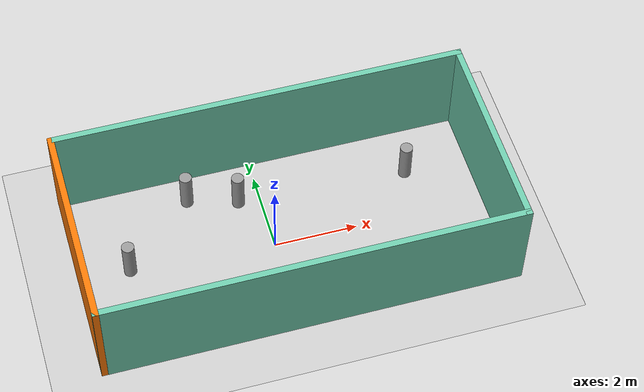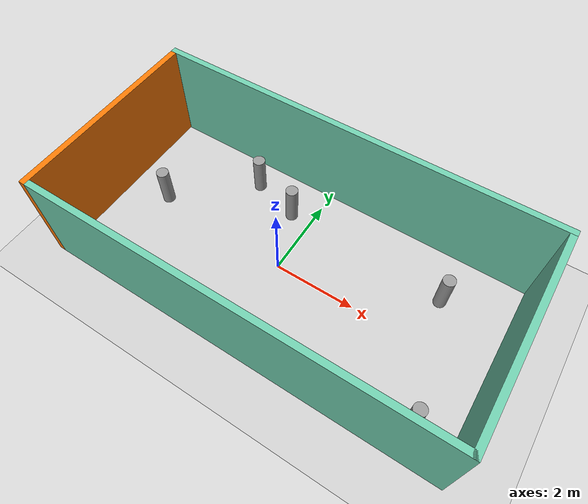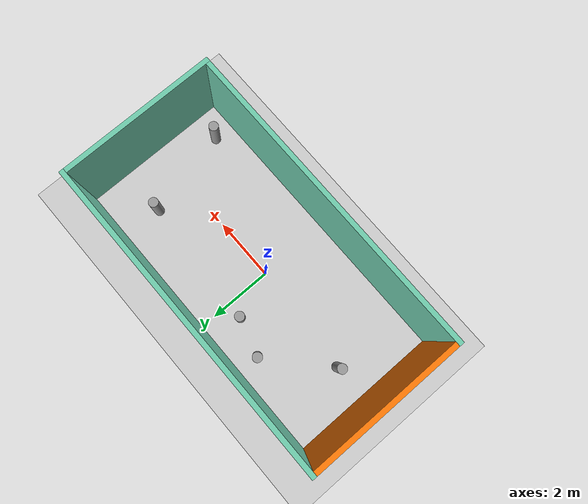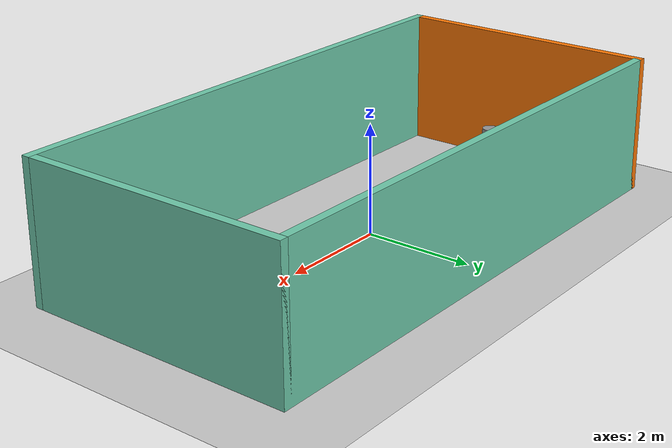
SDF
<sdf version="1.6">
 <world name="default">
  <light name="sun" type="directional">
   <pose>0 0 10 0 -0 0</pose>
   <diffuse>0.8 0.8 0.8 1</diffuse>
   <specular>0.2 0.2 0.2 1</specular>
   <attenuation>
    <range>1000</range>
    <constant>0.9</constant>
    <linear>0.01</linear>
    <quadratic>0.001</quadratic>
   </attenuation>
   <direction>-0.5 0.1 -0.9</direction>
  </light>
  <model name="ground_plane">
   <static>1</static>
   <link name="link">
    <collision name="collision">
     <geometry><plane><normal>0 0 1</normal><size>100 100</size></plane></geometry>
     <surface><friction><ode><mu>100</mu><mu2>50</mu2></ode></friction></surface>
    </collision>
    <visual name="visual">
     <cast_shadows>0</cast_shadows>
     <geometry><plane><normal>0 0 1</normal><size>100 100</size></plane></geometry>
     <material>
      <script><uri>file://media/materials/scripts/gazebo.material</uri><name>Gazebo/Grey</name></script>
     </material>
    </visual>
   </link>
  </model>
  <gravity>0 0 -9.8</gravity>
  <magnetic_field>6e-06 2.3e-05 -4.2e-05</magnetic_field>
  <atmosphere type="adiabatic"/>
  <physics name="default_physics" default="0" type="ode">
   <max_step_size>0.001</max_step_size>
   <real_time_factor>1</real_time_factor>
   <real_time_update_rate>1000</real_time_update_rate>
  </physics>
  <scene><ambient>0.4 0.4 0.4 1</ambient><background>0.7 0.7 0.7 1</background><shadows>1</shadows></scene>
  <spherical_coordinates>
   <surface_model>EARTH_WGS84</surface_model>
   <latitude_deg>0</latitude_deg>
   <longitude_deg>0</longitude_deg>
   <elevation>0</elevation>
   <heading_deg>0</heading_deg>
  </spherical_coordinates>
  <model name="home">
   <pose>0.298542 0.10512 0 0 -0 0</pose>
   <link name="Wall_10">
    <collision name="Wall_10_Collision">
     <geometry><box><size>10 0.15 2.5</size></box></geometry>
     <pose>0 0 1.25 0 -0 0</pose>
    </collision>
    <visual name="Wall_10_Visual">
     <pose>0 0 1.25 0 -0 0</pose>
     <geometry><box><size>10 0.15 2.5</size></box></geometry>
     <material>
      <script><uri>file://media/materials/scripts/gazebo.material</uri><name>Gazebo/Grey</name></script>
      <ambient>0.435294 0.796078 0.67451 1</ambient>
     </material>
     <meta><layer>0</layer></meta>
    </visual>
    <pose>0 2.425 0 0 -0 0</pose>
   </link>
   <link name="Wall_12">
    <collision name="Wall_12_Collision">
     <geometry><box><size>5 0.15 2.5</size></box></geometry>
     <pose>0 0 1.25 0 -0 0</pose>
    </collision>
    <visual name="Wall_12_Visual">
     <pose>0 0 1.25 0 -0 0</pose>
     <geometry><box><size>5 0.15 2.5</size></box></geometry>
     <material>
      <script><uri>file://media/materials/scripts/gazebo.material</uri><name>Gazebo/Grey</name></script>
      <ambient>0.435294 0.796078 0.67451 1</ambient>
     </material>
     <meta><layer>0</layer></meta>
    </visual>
    <pose>4.925 0 0 0 0 -1.5708</pose>
   </link>
   <link name="Wall_14">
    <collision name="Wall_14_Collision">
     <geometry><box><size>10 0.15 2.5</size></box></geometry>
     <pose>0 0 1.25 0 -0 0</pose>
    </collision>
    <visual name="Wall_14_Visual">
     <pose>0 0 1.25 0 -0 0</pose>
     <geometry><box><size>10 0.15 2.5</size></box></geometry>
     <material>
      <script><uri>file://media/materials/scripts/gazebo.material</uri><name>Gazebo/Grey</name></script>
      <ambient>0.435294 0.796078 0.67451 1</ambient>
     </material>
     <meta><layer>0</layer></meta>
    </visual>
    <pose>0 -2.425 0 0 -0 3.14159</pose>
   </link>
   <link name="Wall_15">
    <collision name="Wall_15_Collision">
     <geometry><box><size>5 0.15 2.5</size></box></geometry>
     <pose>0 0 1.25 0 -0 0</pose>
    </collision>
    <visual name="Wall_15_Visual">
     <pose>0 0 1.25 0 -0 0</pose>
     <geometry><box><size>5 0.15 2.5</size></box></geometry>
     <material>
      <script><uri>file://media/materials/scripts/gazebo.material</uri><name>Gazebo/Grey</name></script>
      <ambient>0.996078 0.47451 0.0196078 1</ambient>
     </material>
     <meta><layer>0</layer></meta>
    </visual>
    <pose>-4.925 0 0 0 -0 1.5708</pose>
   </link>
   <static>1</static>
  </model>
  <model name="cylinders">
   <link name="link">
    <inertial>
     <mass>1</mass>
     <inertia><ixx>0.145833</ixx><ixy>0</ixy><ixz>0</ixz><iyy>0.145833</iyy><iyz>0</iyz><izz>0.125</izz></inertia>
    </inertial>
    <visual name="visual">
     <geometry><cylinder><radius>0.15</radius><length>1</length></cylinder></geometry>
     <material>
      <script><name>Gazebo/Grey</name><uri>file://media/materials/scripts/gazebo.material</uri></script>
      <shader type="pixel"><normal_map>__default__</normal_map></shader>
      <ambient>0.3 0.3 0.3 1</ambient>
      <diffuse>0.7 0.7 0.7 1</diffuse>
      <specular>0.01 0.01 0.01 1</specular>
      <emissive>0 0 0 1</emissive>
     </material>
    </visual>
    <collision name="collision">
     <geometry><cylinder><radius>0.15</radius><length>1</length></cylinder></geometry>
     <surface>
      <friction>
       <ode><mu>1</mu><mu2>1</mu2><fdir1>0 0 0</fdir1><slip1>0</slip1><slip2>0</slip2></ode>
       <torsional>
        <coefficient>1</coefficient>
        <patch_radius>0</patch_radius>
        <surface_radius>0</surface_radius>
        <use_patch_radius>1</use_patch_radius>
        <ode><slip>0</slip></ode>
       </torsional>
      </friction>
      <bounce><restitution_coefficient>0</restitution_coefficient><threshold>1e+06</threshold></bounce>
      <contact>
       <collide_without_contact>0</collide_without_contact>
       <collide_without_contact_bitmask>1</collide_without_contact_bitmask>
       <collide_bitmask>1</collide_bitmask>
       <ode>
        <soft_cfm>0</soft_cfm>
        <soft_erp>0.2</soft_erp>
        <kp>1e+13</kp>
        <kd>1</kd>
        <max_vel>0.01</max_vel>
        <min_depth>0</min_depth>
       </ode>
       <bullet>
        <split_impulse>1</split_impulse>
        <split_impulse_penetration_threshold>-0.01</split_impulse_penetration_threshold>
        <soft_cfm>0</soft_cfm>
        <soft_erp>0.2</soft_erp>
        <kp>1e+13</kp>
        <kd>1</kd>
       </bullet>
      </contact>
     </surface>
    </collision>
   </link>
   <link name="link_clone">
    <pose>0.662665 -2.80807 1.2e-05 -3e-06 -4e-06 -0</pose>
    <inertial>
     <mass>1</mass>
     <inertia><ixx>0.145833</ixx><ixy>0</ixy><ixz>0</ixz><iyy>0.145833</iyy><iyz>0</iyz><izz>0.125</izz></inertia>
    </inertial>
    <visual name="visual">
     <geometry><cylinder><radius>0.15</radius><length>1</length></cylinder></geometry>
     <material>
      <script><name>Gazebo/Grey</name><uri>file://media/materials/scripts/gazebo.material</uri></script>
      <shader type="pixel"><normal_map>__default__</normal_map></shader>
      <ambient>0.3 0.3 0.3 1</ambient>
      <diffuse>0.7 0.7 0.7 1</diffuse>
      <specular>0.01 0.01 0.01 1</specular>
      <emissive>0 0 0 1</emissive>
     </material>
    </visual>
    <collision name="collision">
     <geometry><cylinder><radius>0.15</radius><length>1</length></cylinder></geometry>
     <surface>
      <friction>
       <ode><mu>1</mu><mu2>1</mu2><fdir1>0 0 0</fdir1><slip1>0</slip1><slip2>0</slip2></ode>
       <torsional>
        <coefficient>1</coefficient>
        <patch_radius>0</patch_radius>
        <surface_radius>0</surface_radius>
        <use_patch_radius>1</use_patch_radius>
        <ode><slip>0</slip></ode>
       </torsional>
      </friction>
      <bounce><restitution_coefficient>0</restitution_coefficient><threshold>1e+06</threshold></bounce>
      <contact>
       <collide_without_contact>0</collide_without_contact>
       <collide_without_contact_bitmask>1</collide_without_contact_bitmask>
       <collide_bitmask>1</collide_bitmask>
       <ode>
        <soft_cfm>0</soft_cfm>
        <soft_erp>0.2</soft_erp>
        <kp>1e+13</kp>
        <kd>1</kd>
        <max_vel>0.01</max_vel>
        <min_depth>0</min_depth>
       </ode>
       <bullet>
        <split_impulse>1</split_impulse>
        <split_impulse_penetration_threshold>-0.01</split_impulse_penetration_threshold>
        <soft_cfm>0</soft_cfm>
        <soft_erp>0.2</soft_erp>
        <kp>1e+13</kp>
        <kd>1</kd>
       </bullet>
      </contact>
     </surface>
    </collision>
   </link>
   <link name="link_clone_0">
    <pose>-5.30251 0.566877 -2.3e-05 -3e-06 -4e-06 -0</pose>
    <inertial>
     <mass>1</mass>
     <inertia><ixx>0.145833</ixx><ixy>0</ixy><ixz>0</ixz><iyy>0.145833</iyy><iyz>0</iyz><izz>0.125</izz></inertia>
    </inertial>
    <visual name="visual">
     <geometry><cylinder><radius>0.15</radius><length>1</length></cylinder></geometry>
     <material>
      <script><name>Gazebo/Grey</name><uri>file://media/materials/scripts/gazebo.material</uri></script>
      <shader type="pixel"><normal_map>__default__</normal_map></shader>
      <ambient>0.3 0.3 0.3 1</ambient>
      <diffuse>0.7 0.7 0.7 1</diffuse>
      <specular>0.01 0.01 0.01 1</specular>
      <emissive>0 0 0 1</emissive>
     </material>
    </visual>
    <collision name="collision">
     <geometry><cylinder><radius>0.15</radius><length>1</length></cylinder></geometry>
     <surface>
      <friction>
       <ode><mu>1</mu><mu2>1</mu2><fdir1>0 0 0</fdir1><slip1>0</slip1><slip2>0</slip2></ode>
       <torsional>
        <coefficient>1</coefficient>
        <patch_radius>0</patch_radius>
        <surface_radius>0</surface_radius>
        <use_patch_radius>1</use_patch_radius>
        <ode><slip>0</slip></ode>
       </torsional>
      </friction>
      <bounce><restitution_coefficient>0</restitution_coefficient><threshold>1e+06</threshold></bounce>
      <contact>
       <collide_without_contact>0</collide_without_contact>
       <collide_without_contact_bitmask>1</collide_without_contact_bitmask>
       <collide_bitmask>1</collide_bitmask>
       <ode>
        <soft_cfm>0</soft_cfm>
        <soft_erp>0.2</soft_erp>
        <kp>1e+13</kp>
        <kd>1</kd>
        <max_vel>0.01</max_vel>
        <min_depth>0</min_depth>
       </ode>
       <bullet>
        <split_impulse>1</split_impulse>
        <split_impulse_penetration_threshold>-0.01</split_impulse_penetration_threshold>
        <soft_cfm>0</soft_cfm>
        <soft_erp>0.2</soft_erp>
        <kp>1e+13</kp>
        <kd>1</kd>
       </bullet>
      </contact>
     </surface>
    </collision>
   </link>
   <link name="link_clone_1">
    <pose>-7.0499 -1.00859 -2.5e-05 -3e-06 -4e-06 -0</pose>
    <inertial>
     <mass>1</mass>
     <inertia><ixx>0.145833</ixx><ixy>0</ixy><ixz>0</ixz><iyy>0.145833</iyy><iyz>0</iyz><izz>0.125</izz></inertia>
    </inertial>
    <visual name="visual">
     <geometry><cylinder><radius>0.15</radius><length>1</length></cylinder></geometry>
     <material>
      <script><name>Gazebo/Grey</name><uri>file://media/materials/scripts/gazebo.material</uri></script>
      <shader type="pixel"><normal_map>__default__</normal_map></shader>
      <ambient>0.3 0.3 0.3 1</ambient>
      <diffuse>0.7 0.7 0.7 1</diffuse>
      <specular>0.01 0.01 0.01 1</specular>
      <emissive>0 0 0 1</emissive>
     </material>
    </visual>
    <collision name="collision">
     <geometry><cylinder><radius>0.15</radius><length>1</length></cylinder></geometry>
     <surface>
      <friction>
       <ode><mu>1</mu><mu2>1</mu2><fdir1>0 0 0</fdir1><slip1>0</slip1><slip2>0</slip2></ode>
       <torsional>
        <coefficient>1</coefficient>
        <patch_radius>0</patch_radius>
        <surface_radius>0</surface_radius>
        <use_patch_radius>1</use_patch_radius>
        <ode><slip>0</slip></ode>
       </torsional>
      </friction>
      <bounce><restitution_coefficient>0</restitution_coefficient><threshold>1e+06</threshold></bounce>
      <contact>
       <collide_without_contact>0</collide_without_contact>
       <collide_without_contact_bitmask>1</collide_without_contact_bitmask>
       <collide_bitmask>1</collide_bitmask>
       <ode>
        <soft_cfm>0</soft_cfm>
        <soft_erp>0.2</soft_erp>
        <kp>1e+13</kp>
        <kd>1</kd>
        <max_vel>0.01</max_vel>
        <min_depth>0</min_depth>
       </ode>
       <bullet>
        <split_impulse>1</split_impulse>
        <split_impulse_penetration_threshold>-0.01</split_impulse_penetration_threshold>
        <soft_cfm>0</soft_cfm>
        <soft_erp>0.2</soft_erp>
        <kp>1e+13</kp>
        <kd>1</kd>
       </bullet>
      </contact>
     </surface>
    </collision>
   </link>
   <link name="link_clone_2">
    <pose>-4.12062 0.215986 -1.7e-05 -3e-06 -4e-06 -0</pose>
    <inertial>
     <mass>1</mass>
     <inertia><ixx>0.145833</ixx><ixy>0</ixy><ixz>0</ixz><iyy>0.145833</iyy><iyz>0</iyz><izz>0.125</izz></inertia>
    </inertial>
    <visual name="visual">
     <geometry><cylinder><radius>0.15</radius><length>1</length></cylinder></geometry>
     <material>
      <script><name>Gazebo/Grey</name><uri>file://media/materials/scripts/gazebo.material</uri></script>
      <shader type="pixel"><normal_map>__default__</normal_map></shader>
      <ambient>0.3 0.3 0.3 1</ambient>
      <diffuse>0.7 0.7 0.7 1</diffuse>
      <specular>0.01 0.01 0.01 1</specular>
      <emissive>0 0 0 1</emissive>
     </material>
    </visual>
    <collision name="collision">
     <geometry><cylinder><radius>0.15</radius><length>1</length></cylinder></geometry>
     <surface>
      <friction>
       <ode><mu>1</mu><mu2>1</mu2><fdir1>0 0 0</fdir1><slip1>0</slip1><slip2>0</slip2></ode>
       <torsional>
        <coefficient>1</coefficient>
        <patch_radius>0</patch_radius>
        <surface_radius>0</surface_radius>
        <use_patch_radius>1</use_patch_radius>
        <ode><slip>0</slip></ode>
       </torsional>
      </friction>
      <bounce><restitution_coefficient>0</restitution_coefficient><threshold>1e+06</threshold></bounce>
      <contact>
       <collide_without_contact>0</collide_without_contact>
       <collide_without_contact_bitmask>1</collide_without_contact_bitmask>
       <collide_bitmask>1</collide_bitmask>
       <ode>
        <soft_cfm>0</soft_cfm>
        <soft_erp>0.2</soft_erp>
        <kp>1e+13</kp>
        <kd>1</kd>
        <max_vel>0.01</max_vel>
        <min_depth>0</min_depth>
       </ode>
       <bullet>
        <split_impulse>1</split_impulse>
        <split_impulse_penetration_threshold>-0.01</split_impulse_penetration_threshold>
        <soft_cfm>0</soft_cfm>
        <soft_erp>0.2</soft_erp>
        <kp>1e+13</kp>
        <kd>1</kd>
       </bullet>
      </contact>
     </surface>
    </collision>
   </link>
   <static>0</static>
   <pose>3.59343 1.20088 0.499997 0 0 -5e-06</pose>
  </model>
 </world>
</sdf>
